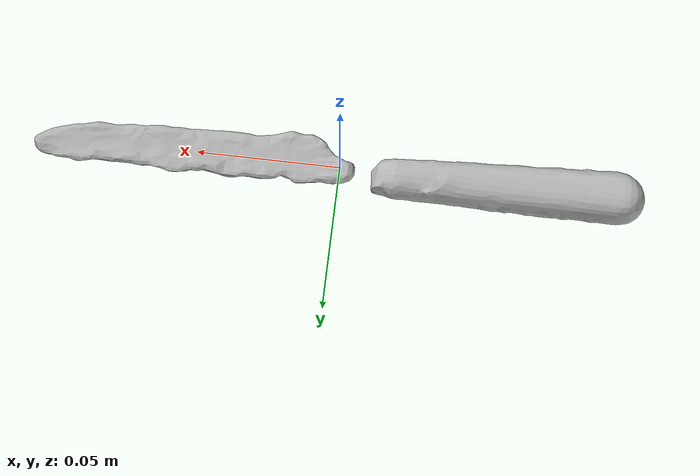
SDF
<?xml version='1.0'?>
<sdf version='1.6'>
	<model name='b_table_knife'>
		<static>false</static>
		<pose>0 0 0 0 0 0</pose>

		<link name='link'>
			<inertial>
			  <mass>0.1</mass>
			  <pose>-8.8541e-06 -4.0274e-05 -0.00010513 0 0 0</pose>
			  <inertia>
				  <ixx>0.000005</ixx>
				  <iyy>0.0002433333</iyy>
				  <izz>0.0002433333</izz>
			  </inertia>
			</inertial>
			<sensor name="tool_contact_sensor" type="contact">
				<always_on>true</always_on>
				<update_rate>30.0</update_rate>
				<contact>
					<collision>collision</collision>
				</contact>
				<plugin name="tool_bumper" filename="libgazebo_ros_bumper.so">
					<bumperTopicName>tool_contact_sensor_state</bumperTopicName>
					<frameName>world</frameName>
				</plugin>
			</sensor>
			<collision name='collision'>
				<geometry>
					<mesh>
						<uri>model://b_table_knife/b_table_knife.dae</uri>
					</mesh>
				</geometry>
				<surface>
					<friction>
						<ode>
							<mu>0.2</mu>
							<mu2>0.2</mu2>
						</ode>
					</friction>
				</surface>
			</collision>
			<visual name='visual'>
				<geometry>
					<mesh>
						<uri>model://b_table_knife/b_table_knife.dae</uri>
					</mesh>
				</geometry>
			</visual>
		</link>
	</model>
</sdf>
